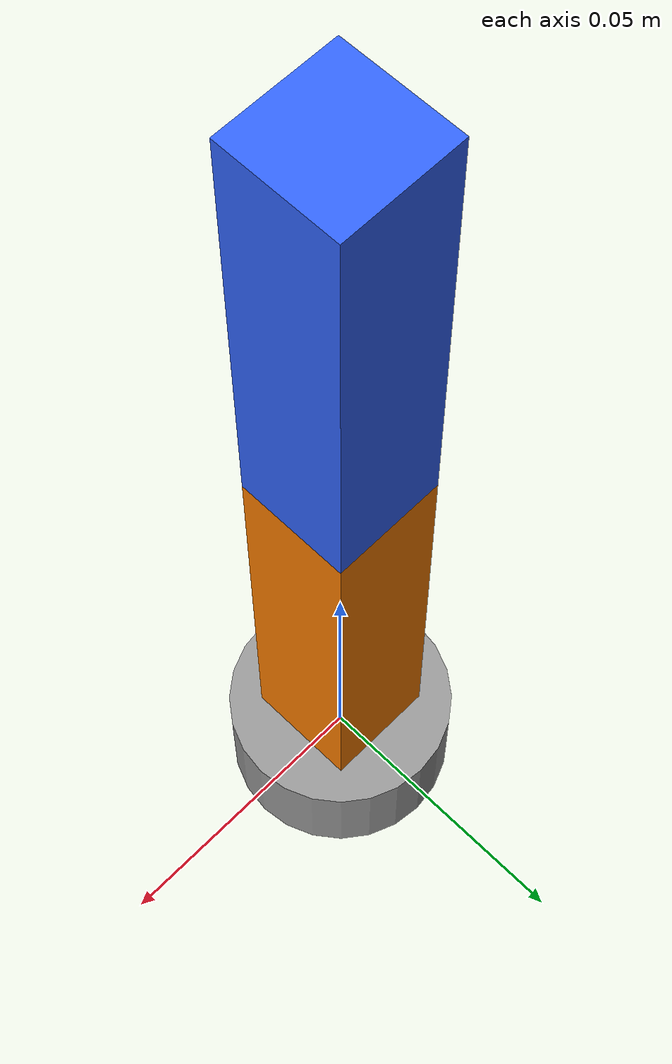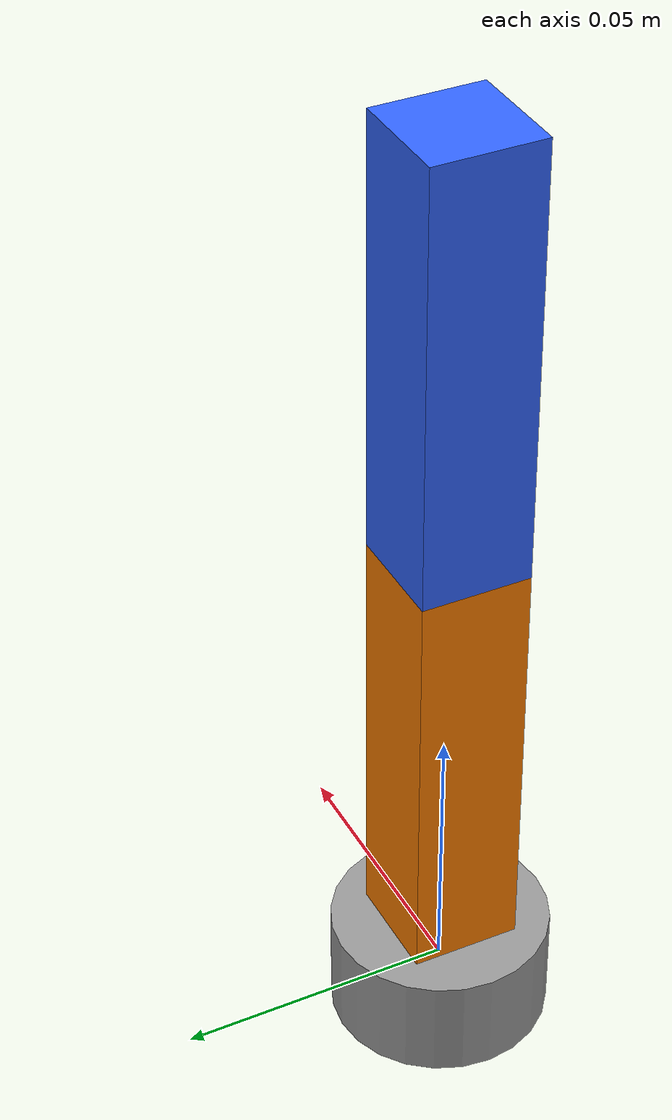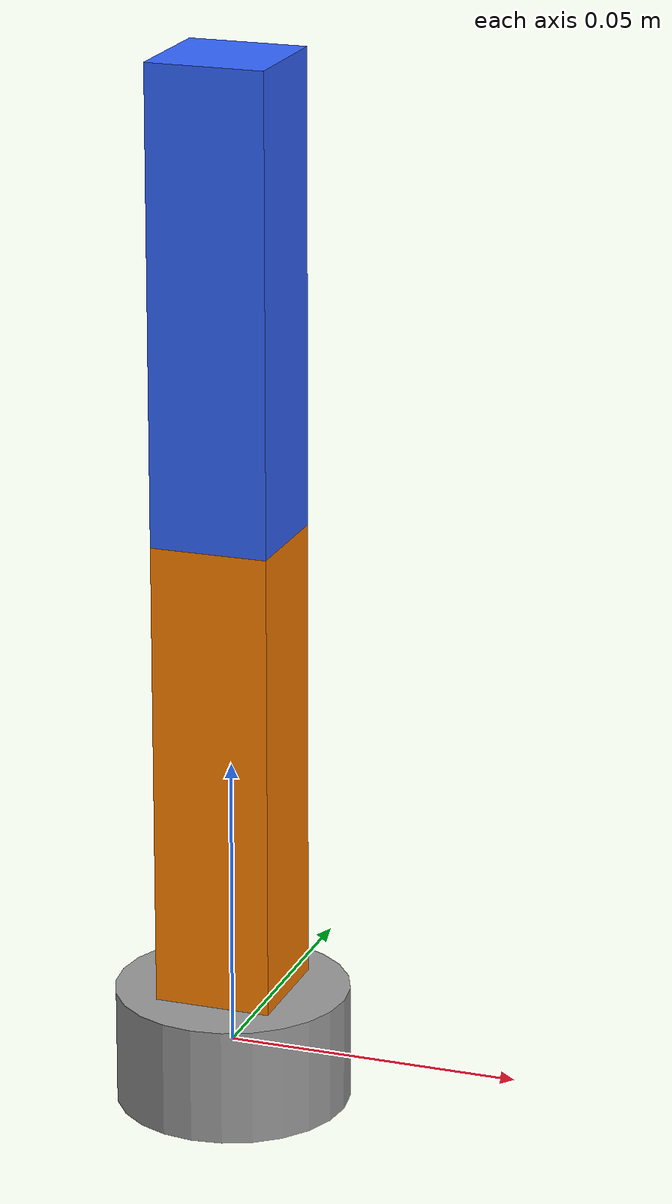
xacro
<?xml version="1.0"?>
<robot name="joint23_bringup" xmlns:xacro="http://www.ros.org/wiki/xacro">

  <!-- ============ Argumen (bisa dioverride dari launch file) ============ -->
  <xacro:arg name="port_name" default="/dev/ttyUSB0"/>
  <xacro:arg name="baud_rate" default="1000000"/>

  <!-- ============ Link dasar ============ -->
  <link name="base_link">
    <visual>
      <geometry><cylinder radius="0.02" length="0.02"/></geometry>
      <material name="grey"><color rgba="0.6 0.6 0.6 1"/></material>
    </visual>
    <collision>
      <geometry><cylinder radius="0.02" length="0.02"/></geometry>
    </collision>
    <inertial>
      <mass value="0.1"/>
      <inertia ixx="0.0001" ixy="0" ixz="0" iyy="0.0001" iyz="0" izz="0.0001"/>
    </inertial>
  </link>

  <link name="joint2_link">
    <visual>
      <origin xyz="0 0 0.04" rpy="0 0 0"/>
      <geometry><box size="0.02 0.02 0.08"/></geometry>
      <material name="orange"><color rgba="1.0 0.5 0.0 1"/></material>
    </visual>
    <collision>
      <origin xyz="0 0 0.04" rpy="0 0 0"/>
      <geometry><box size="0.02 0.02 0.08"/></geometry>
    </collision>
    <inertial>
      <origin xyz="0 0 0.04"/>
      <mass value="0.05"/>
      <inertia ixx="0.00005" ixy="0" ixz="0" iyy="0.00005" iyz="0" izz="0.00002"/>
    </inertial>
  </link>

  <link name="joint3_link">
    <visual>
      <origin xyz="0 0 0.04" rpy="0 0 0"/>
      <geometry><box size="0.02 0.02 0.08"/></geometry>
      <material name="blue"><color rgba="0.2 0.4 1.0 1"/></material>
    </visual>
    <collision>
      <origin xyz="0 0 0.04" rpy="0 0 0"/>
      <geometry><box size="0.02 0.02 0.08"/></geometry>
    </collision>
    <inertial>
      <origin xyz="0 0 0.04"/>
      <mass value="0.05"/>
      <inertia ixx="0.00005" ixy="0" ixz="0" iyy="0.00005" iyz="0" izz="0.00002"/>
    </inertial>
  </link>

  <!-- ============ Joint ID2 (base -> joint2_link) ============ -->
  <joint name="joint2" type="revolute">
    <parent link="base_link"/>
    <child link="joint2_link"/>
    <origin xyz="0 0 0.01" rpy="0 0 0"/>
    <axis xyz="0 0 1"/>
    <!-- konvensi ros2_control: raw tengah (2048) = 0 rad, range -pi..+pi -->
    <limit lower="-3.1415927" upper="3.1415927" effort="2.0" velocity="4.0"/>
  </joint>

  <!-- ============ Joint ID3 (joint2_link -> joint3_link), serial/rangkai ============ -->
  <joint name="joint3" type="revolute">
    <parent link="joint2_link"/>
    <child link="joint3_link"/>
    <origin xyz="0 0 0.08" rpy="0 0 0"/>
    <axis xyz="0 0 1"/>
    <limit lower="-3.1415927" upper="3.1415927" effort="2.0" velocity="4.0"/>
  </joint>

  <!-- ============ ros2_control: 1 hardware system, 2 joint (1 bus/port yang sama) ============ -->
  <ros2_control name="joint23_system" type="system">
    <hardware>
      <plugin>dynamixel_hardware_interface/DynamixelHardware</plugin>
      <param name="disable_torque_at_init">true</param>
      <param name="port_name">$(arg port_name)</param>
      <param name="baud_rate">$(arg baud_rate)</param>
      <param name="number_of_joints">2</param>
      <param name="number_of_transmissions">2</param>
      <param name="error_timeout_ms">500</param>
      <param name="dynamixel_model_folder">/param/dxl_model</param>
      <param name="transmission_to_joint_matrix">1,0,0,1</param>
      <param name="joint_to_transmission_matrix">1,0,0,1</param>
    </hardware>

    <joint name="joint2">
      <command_interface name="position"/>
      <state_interface name="position"/>
      <state_interface name="velocity"/>
      <state_interface name="effort"/>
    </joint>

    <joint name="joint3">
      <command_interface name="position"/>
      <state_interface name="position"/>
      <state_interface name="velocity"/>
      <state_interface name="effort"/>
    </joint>

    <gpio name="dxl2">
      <param name="type">dxl</param>
      <param name="ID">2</param>
      <command_interface name="Goal Position"/>
      <state_interface name="Present Position"/>
      <state_interface name="Present Velocity"/>
      <state_interface name="Present Current"/>
      <param name="Operating Mode">3</param>
      <param name="Position P Gain">800</param>
      <param name="Position I Gain">100</param>
      <param name="Position D Gain">100</param>
    </gpio>

    <gpio name="dxl3">
      <param name="type">dxl</param>
      <param name="ID">3</param>
      <command_interface name="Goal Position"/>
      <state_interface name="Present Position"/>
      <state_interface name="Present Velocity"/>
      <state_interface name="Present Current"/>
      <param name="Operating Mode">3</param>
      <param name="Position P Gain">800</param>
      <param name="Position I Gain">100</param>
      <param name="Position D Gain">100</param>
    </gpio>
  </ros2_control>

</robot>
